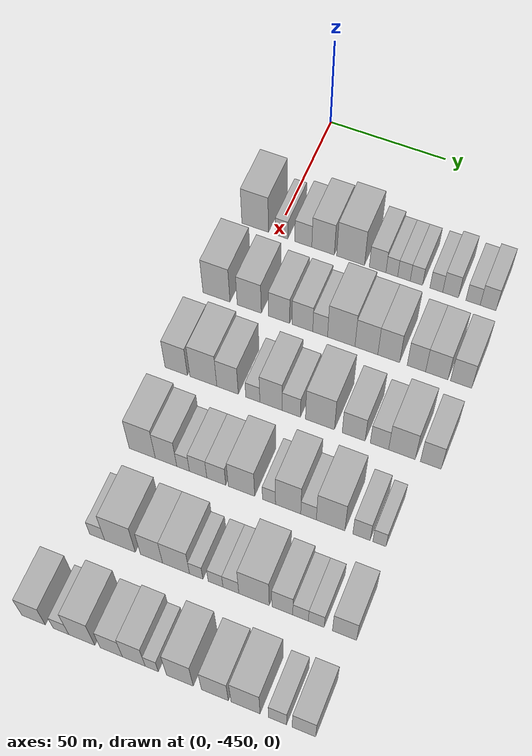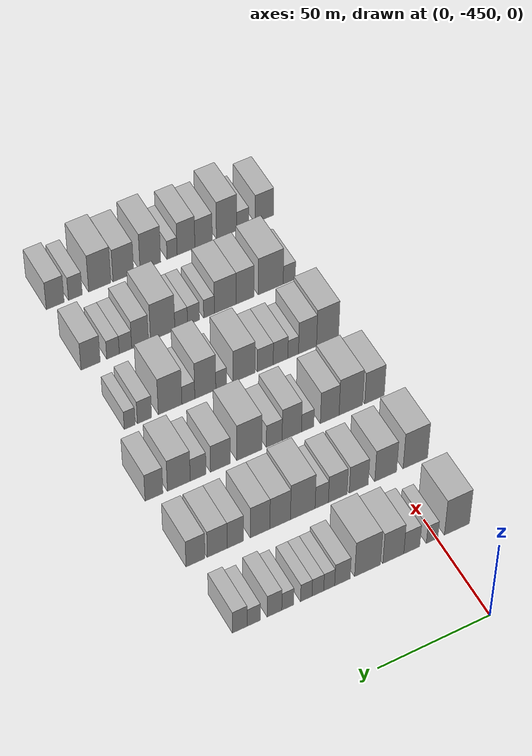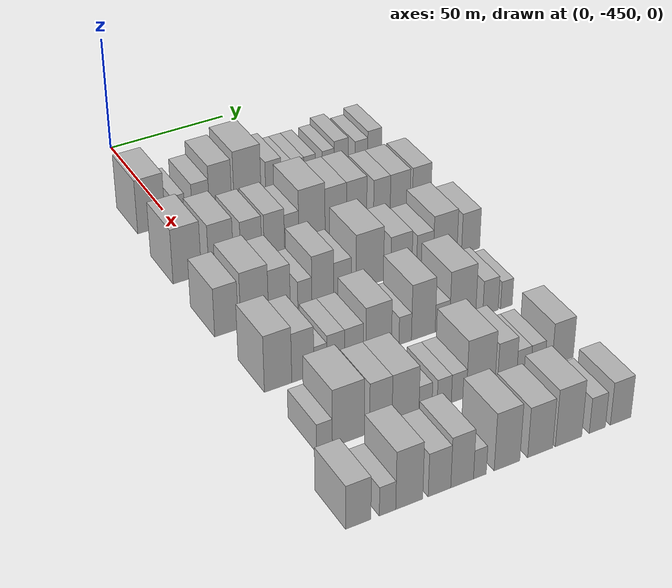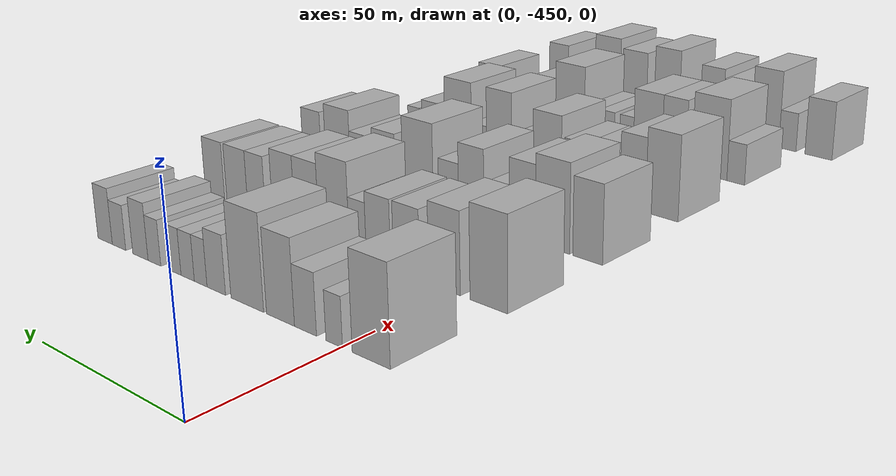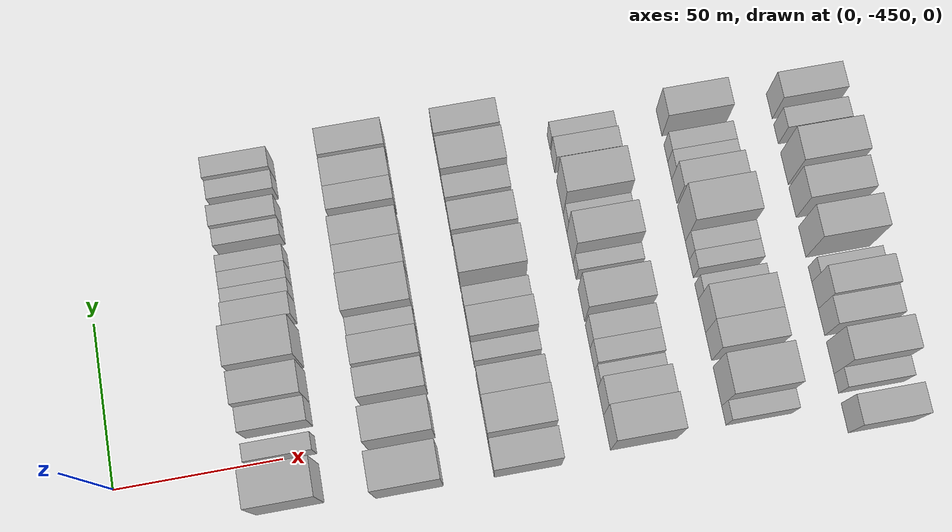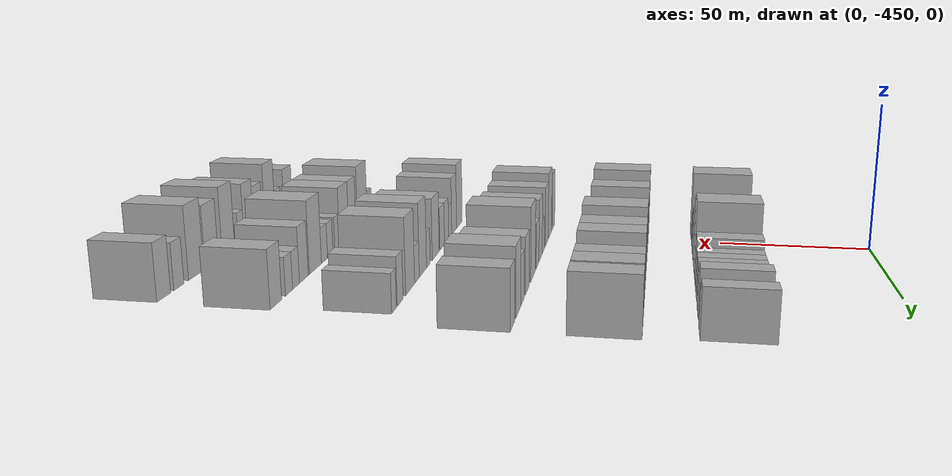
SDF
<sdf version="1.6">
 <world name="default">
  <model name="building_14">
   <static>1</static>
   <pose>50.0000 -459.0556 0 0.000000 0.000000 0.000000</pose>
   <link name="link">
    <pose>0 0 12.00 0 0 0</pose>
    <collision name="collision"><geometry><box><size>20.0000 11.4390 24.0000</size></box></geometry></collision>
    <visual name="visual">
     <cast_shadows>0</cast_shadows>
     <geometry><box><size>20.0000 11.4390 24.0000</size></box></geometry>
     <material>
      <script>
       <uri>model://HANNAS_wall/materials/scripts</uri>
       <uri>model://HANNAS_wall/materials/textures</uri>
       <name>vrc/HANNAS_wall</name>
      </script>
     </material>
    </visual>
   </link>
  </model>
  <model name="building_15">
   <static>1</static>
   <pose>50.0000 -447.7191 0 0.000000 0.000000 0.000000</pose>
   <link name="link">
    <pose>0 0 6.00 0 0 0</pose>
    <collision name="collision"><geometry><box><size>20.0000 5.2340 12.0000</size></box></geometry></collision>
    <visual name="visual">
     <cast_shadows>0</cast_shadows>
     <geometry><box><size>20.0000 5.2340 12.0000</size></box></geometry>
     <material>
      <script>
       <uri>model://HANNAS_wall/materials/scripts</uri>
       <uri>model://HANNAS_wall/materials/textures</uri>
       <name>vrc/HANNAS_wall</name>
      </script>
     </material>
    </visual>
   </link>
  </model>
  <model name="building_16">
   <static>1</static>
   <pose>50.0000 -438.4945 0 0.000000 0.000000 0.000000</pose>
   <link name="link">
    <pose>0 0 7.50 0 0 0</pose>
    <collision name="collision"><geometry><box><size>20.0000 7.2152 15.0000</size></box></geometry></collision>
    <visual name="visual">
     <cast_shadows>0</cast_shadows>
     <geometry><box><size>20.0000 7.2152 15.0000</size></box></geometry>
     <material>
      <script>
       <uri>model://HANNAS_wall/materials/scripts</uri>
       <uri>model://HANNAS_wall/materials/textures</uri>
       <name>vrc/HANNAS_wall</name>
      </script>
     </material>
    </visual>
   </link>
  </model>
  <model name="building_17">
   <static>1</static>
   <pose>50.0000 -430.1381 0 0.000000 0.000000 0.000000</pose>
   <link name="link">
    <pose>0 0 10.50 0 0 0</pose>
    <collision name="collision"><geometry><box><size>20.0000 9.4976 21.0000</size></box></geometry></collision>
    <visual name="visual">
     <cast_shadows>0</cast_shadows>
     <geometry><box><size>20.0000 9.4976 21.0000</size></box></geometry>
     <material>
      <script>
       <uri>model://HANNAS_wall/materials/scripts</uri>
       <uri>model://HANNAS_wall/materials/textures</uri>
       <name>vrc/HANNAS_wall</name>
      </script>
     </material>
    </visual>
   </link>
  </model>
  <model name="building_18">
   <static>1</static>
   <pose>50.0000 -418.5668 0 0.000000 0.000000 0.000000</pose>
   <link name="link">
    <pose>0 0 12.00 0 0 0</pose>
    <collision name="collision"><geometry><box><size>20.0000 11.6448 24.0000</size></box></geometry></collision>
    <visual name="visual">
     <cast_shadows>0</cast_shadows>
     <geometry><box><size>20.0000 11.6448 24.0000</size></box></geometry>
     <material>
      <script>
       <uri>model://HANNAS_wall/materials/scripts</uri>
       <uri>model://HANNAS_wall/materials/textures</uri>
       <name>vrc/HANNAS_wall</name>
      </script>
     </material>
    </visual>
   </link>
  </model>
  <model name="building_19">
   <static>1</static>
   <pose>50.0000 -407.2916 0 0.000000 0.000000 0.000000</pose>
   <link name="link">
    <pose>0 0 7.50 0 0 0</pose>
    <collision name="collision"><geometry><box><size>20.0000 6.9057 15.0000</size></box></geometry></collision>
    <visual name="visual">
     <cast_shadows>0</cast_shadows>
     <geometry><box><size>20.0000 6.9057 15.0000</size></box></geometry>
     <material>
      <script>
       <uri>model://HANNAS_wall/materials/scripts</uri>
       <uri>model://HANNAS_wall/materials/textures</uri>
       <name>vrc/HANNAS_wall</name>
      </script>
     </material>
    </visual>
   </link>
  </model>
  <model name="building_20">
   <static>1</static>
   <pose>50.0000 -401.4126 0 0.000000 0.000000 0.000000</pose>
   <link name="link">
    <pose>0 0 6.00 0 0 0</pose>
    <collision name="collision"><geometry><box><size>20.0000 4.8524 12.0000</size></box></geometry></collision>
    <visual name="visual">
     <cast_shadows>0</cast_shadows>
     <geometry><box><size>20.0000 4.8524 12.0000</size></box></geometry>
     <material>
      <script>
       <uri>model://HANNAS_wall/materials/scripts</uri>
       <uri>model://HANNAS_wall/materials/textures</uri>
       <name>vrc/HANNAS_wall</name>
      </script>
     </material>
    </visual>
   </link>
  </model>
  <model name="building_21">
   <static>1</static>
   <pose>50.0000 -396.3918 0 0.000000 0.000000 0.000000</pose>
   <link name="link">
    <pose>0 0 6.00 0 0 0</pose>
    <collision name="collision"><geometry><box><size>20.0000 5.1893 12.0000</size></box></geometry></collision>
    <visual name="visual">
     <cast_shadows>0</cast_shadows>
     <geometry><box><size>20.0000 5.1893 12.0000</size></box></geometry>
     <material>
      <script>
       <uri>model://HANNAS_wall/materials/scripts</uri>
       <uri>model://HANNAS_wall/materials/textures</uri>
       <name>vrc/HANNAS_wall</name>
      </script>
     </material>
    </visual>
   </link>
  </model>
  <model name="building_22">
   <static>1</static>
   <pose>50.0000 -391.2561 0 0.000000 0.000000 0.000000</pose>
   <link name="link">
    <pose>0 0 6.00 0 0 0</pose>
    <collision name="collision"><geometry><box><size>20.0000 5.0821 12.0000</size></box></geometry></collision>
    <visual name="visual">
     <cast_shadows>0</cast_shadows>
     <geometry><box><size>20.0000 5.0821 12.0000</size></box></geometry>
     <material>
      <script>
       <uri>model://HANNAS_wall/materials/scripts</uri>
       <uri>model://HANNAS_wall/materials/textures</uri>
       <name>vrc/HANNAS_wall</name>
      </script>
     </material>
    </visual>
   </link>
  </model>
  <model name="building_23">
   <static>1</static>
   <pose>50.0000 -383.0944 0 0.000000 0.000000 0.000000</pose>
   <link name="link">
    <pose>0 0 6.00 0 0 0</pose>
    <collision name="collision"><geometry><box><size>20.0000 5.2412 12.0000</size></box></geometry></collision>
    <visual name="visual">
     <cast_shadows>0</cast_shadows>
     <geometry><box><size>20.0000 5.2412 12.0000</size></box></geometry>
     <material>
      <script>
       <uri>model://HANNAS_wall/materials/scripts</uri>
       <uri>model://HANNAS_wall/materials/textures</uri>
       <name>vrc/HANNAS_wall</name>
      </script>
     </material>
    </visual>
   </link>
  </model>
  <model name="building_24">
   <static>1</static>
   <pose>50.0000 -377.2749 0 0.000000 0.000000 0.000000</pose>
   <link name="link">
    <pose>0 0 7.50 0 0 0</pose>
    <collision name="collision"><geometry><box><size>20.0000 6.3980 15.0000</size></box></geometry></collision>
    <visual name="visual">
     <cast_shadows>0</cast_shadows>
     <geometry><box><size>20.0000 6.3980 15.0000</size></box></geometry>
     <material>
      <script>
       <uri>model://HANNAS_wall/materials/scripts</uri>
       <uri>model://HANNAS_wall/materials/textures</uri>
       <name>vrc/HANNAS_wall</name>
      </script>
     </material>
    </visual>
   </link>
  </model>
  <model name="building_25">
   <static>1</static>
   <pose>50.0000 -368.1648 0 0.000000 0.000000 0.000000</pose>
   <link name="link">
    <pose>0 0 6.00 0 0 0</pose>
    <collision name="collision"><geometry><box><size>20.0000 5.8223 12.0000</size></box></geometry></collision>
    <visual name="visual">
     <cast_shadows>0</cast_shadows>
     <geometry><box><size>20.0000 5.8223 12.0000</size></box></geometry>
     <material>
      <script>
       <uri>model://HANNAS_wall/materials/scripts</uri>
       <uri>model://HANNAS_wall/materials/textures</uri>
       <name>vrc/HANNAS_wall</name>
      </script>
     </material>
    </visual>
   </link>
  </model>
  <model name="building_26">
   <static>1</static>
   <pose>50.0000 -362.0765 0 0.000000 0.000000 0.000000</pose>
   <link name="link">
    <pose>0 0 7.50 0 0 0</pose>
    <collision name="collision"><geometry><box><size>20.0000 6.3543 15.0000</size></box></geometry></collision>
    <visual name="visual">
     <cast_shadows>0</cast_shadows>
     <geometry><box><size>20.0000 6.3543 15.0000</size></box></geometry>
     <material>
      <script>
       <uri>model://HANNAS_wall/materials/scripts</uri>
       <uri>model://HANNAS_wall/materials/textures</uri>
       <name>vrc/HANNAS_wall</name>
      </script>
     </material>
    </visual>
   </link>
  </model>
  <model name="building_137">
   <static>1</static>
   <pose>85.0000 -460.5840 0 0.000000 0.000000 0.000000</pose>
   <link name="link">
    <pose>0 0 12.00 0 0 0</pose>
    <collision name="collision"><geometry><box><size>20.0000 11.3625 24.0000</size></box></geometry></collision>
    <visual name="visual">
     <cast_shadows>0</cast_shadows>
     <geometry><box><size>20.0000 11.3625 24.0000</size></box></geometry>
     <material>
      <script>
       <uri>model://HANNAS_wall/materials/scripts</uri>
       <uri>model://HANNAS_wall/materials/textures</uri>
       <name>vrc/HANNAS_wall</name>
      </script>
     </material>
    </visual>
   </link>
  </model>
  <model name="building_138">
   <static>1</static>
   <pose>85.0000 -446.8792 0 0.000000 0.000000 0.000000</pose>
   <link name="link">
    <pose>0 0 10.50 0 0 0</pose>
    <collision name="collision"><geometry><box><size>20.0000 10.0472 21.0000</size></box></geometry></collision>
    <visual name="visual">
     <cast_shadows>0</cast_shadows>
     <geometry><box><size>20.0000 10.0472 21.0000</size></box></geometry>
     <material>
      <script>
       <uri>model://HANNAS_wall/materials/scripts</uri>
       <uri>model://HANNAS_wall/materials/textures</uri>
       <name>vrc/HANNAS_wall</name>
      </script>
     </material>
    </visual>
   </link>
  </model>
  <model name="building_139">
   <static>1</static>
   <pose>85.0000 -434.5070 0 0.000000 0.000000 0.000000</pose>
   <link name="link">
    <pose>0 0 9.00 0 0 0</pose>
    <collision name="collision"><geometry><box><size>20.0000 8.6971 18.0000</size></box></geometry></collision>
    <visual name="visual">
     <cast_shadows>0</cast_shadows>
     <geometry><box><size>20.0000 8.6971 18.0000</size></box></geometry>
     <material>
      <script>
       <uri>model://HANNAS_wall/materials/scripts</uri>
       <uri>model://HANNAS_wall/materials/textures</uri>
       <name>vrc/HANNAS_wall</name>
      </script>
     </material>
    </visual>
   </link>
  </model>
  <model name="building_140">
   <static>1</static>
   <pose>85.0000 -424.9160 0 0.000000 0.000000 0.000000</pose>
   <link name="link">
    <pose>0 0 9.00 0 0 0</pose>
    <collision name="collision"><geometry><box><size>20.0000 8.4850 18.0000</size></box></geometry></collision>
    <visual name="visual">
     <cast_shadows>0</cast_shadows>
     <geometry><box><size>20.0000 8.4850 18.0000</size></box></geometry>
     <material>
      <script>
       <uri>model://HANNAS_wall/materials/scripts</uri>
       <uri>model://HANNAS_wall/materials/textures</uri>
       <name>vrc/HANNAS_wall</name>
      </script>
     </material>
    </visual>
   </link>
  </model>
  <model name="building_141">
   <static>1</static>
   <pose>85.0000 -417.6620 0 0.000000 0.000000 0.000000</pose>
   <link name="link">
    <pose>0 0 7.50 0 0 0</pose>
    <collision name="collision"><geometry><box><size>20.0000 6.0230 15.0000</size></box></geometry></collision>
    <visual name="visual">
     <cast_shadows>0</cast_shadows>
     <geometry><box><size>20.0000 6.0230 15.0000</size></box></geometry>
     <material>
      <script>
       <uri>model://HANNAS_wall/materials/scripts</uri>
       <uri>model://HANNAS_wall/materials/textures</uri>
       <name>vrc/HANNAS_wall</name>
      </script>
     </material>
    </visual>
   </link>
  </model>
  <model name="building_142">
   <static>1</static>
   <pose>85.0000 -409.0831 0 0.000000 0.000000 0.000000</pose>
   <link name="link">
    <pose>0 0 12.00 0 0 0</pose>
    <collision name="collision"><geometry><box><size>20.0000 11.1348 24.0000</size></box></geometry></collision>
    <visual name="visual">
     <cast_shadows>0</cast_shadows>
     <geometry><box><size>20.0000 11.1348 24.0000</size></box></geometry>
     <material>
      <script>
       <uri>model://HANNAS_wall/materials/scripts</uri>
       <uri>model://HANNAS_wall/materials/textures</uri>
       <name>vrc/HANNAS_wall</name>
      </script>
     </material>
    </visual>
   </link>
  </model>
  <model name="building_143">
   <static>1</static>
   <pose>85.0000 -398.9095 0 0.000000 0.000000 0.000000</pose>
   <link name="link">
    <pose>0 0 10.50 0 0 0</pose>
    <collision name="collision"><geometry><box><size>20.0000 9.2125 21.0000</size></box></geometry></collision>
    <visual name="visual">
     <cast_shadows>0</cast_shadows>
     <geometry><box><size>20.0000 9.2125 21.0000</size></box></geometry>
     <material>
      <script>
       <uri>model://HANNAS_wall/materials/scripts</uri>
       <uri>model://HANNAS_wall/materials/textures</uri>
       <name>vrc/HANNAS_wall</name>
      </script>
     </material>
    </visual>
   </link>
  </model>
  <model name="building_144">
   <static>1</static>
   <pose>85.0000 -389.9271 0 0.000000 0.000000 0.000000</pose>
   <link name="link">
    <pose>0 0 10.50 0 0 0</pose>
    <collision name="collision"><geometry><box><size>20.0000 8.7524 21.0000</size></box></geometry></collision>
    <visual name="visual">
     <cast_shadows>0</cast_shadows>
     <geometry><box><size>20.0000 8.7524 21.0000</size></box></geometry>
     <material>
      <script>
       <uri>model://HANNAS_wall/materials/scripts</uri>
       <uri>model://HANNAS_wall/materials/textures</uri>
       <name>vrc/HANNAS_wall</name>
      </script>
     </material>
    </visual>
   </link>
  </model>
  <model name="building_145">
   <static>1</static>
   <pose>85.0000 -378.8955 0 0.000000 0.000000 0.000000</pose>
   <link name="link">
    <pose>0 0 9.00 0 0 0</pose>
    <collision name="collision"><geometry><box><size>20.0000 7.3107 18.0000</size></box></geometry></collision>
    <visual name="visual">
     <cast_shadows>0</cast_shadows>
     <geometry><box><size>20.0000 7.3107 18.0000</size></box></geometry>
     <material>
      <script>
       <uri>model://HANNAS_wall/materials/scripts</uri>
       <uri>model://HANNAS_wall/materials/textures</uri>
       <name>vrc/HANNAS_wall</name>
      </script>
     </material>
    </visual>
   </link>
  </model>
  <model name="building_146">
   <static>1</static>
   <pose>85.0000 -370.8297 0 0.000000 0.000000 0.000000</pose>
   <link name="link">
    <pose>0 0 9.00 0 0 0</pose>
    <collision name="collision"><geometry><box><size>20.0000 8.8209 18.0000</size></box></geometry></collision>
    <visual name="visual">
     <cast_shadows>0</cast_shadows>
     <geometry><box><size>20.0000 8.8209 18.0000</size></box></geometry>
     <material>
      <script>
       <uri>model://HANNAS_wall/materials/scripts</uri>
       <uri>model://HANNAS_wall/materials/textures</uri>
       <name>vrc/HANNAS_wall</name>
      </script>
     </material>
    </visual>
   </link>
  </model>
  <model name="building_147">
   <static>1</static>
   <pose>85.0000 -361.2389 0 0.000000 0.000000 0.000000</pose>
   <link name="link">
    <pose>0 0 9.00 0 0 0</pose>
    <collision name="collision"><geometry><box><size>20.0000 8.3607 18.0000</size></box></geometry></collision>
    <visual name="visual">
     <cast_shadows>0</cast_shadows>
     <geometry><box><size>20.0000 8.3607 18.0000</size></box></geometry>
     <material>
      <script>
       <uri>model://HANNAS_wall/materials/scripts</uri>
       <uri>model://HANNAS_wall/materials/textures</uri>
       <name>vrc/HANNAS_wall</name>
      </script>
     </material>
    </visual>
   </link>
  </model>
  <model name="building_266">
   <static>1</static>
   <pose>120.0000 -461.8025 0 0.000000 0.000000 0.000000</pose>
   <link name="link">
    <pose>0 0 10.50 0 0 0</pose>
    <collision name="collision"><geometry><box><size>20.0000 9.1870 21.0000</size></box></geometry></collision>
    <visual name="visual">
     <cast_shadows>0</cast_shadows>
     <geometry><box><size>20.0000 9.1870 21.0000</size></box></geometry>
     <material>
      <script>
       <uri>model://HANNAS_wall/materials/scripts</uri>
       <uri>model://HANNAS_wall/materials/textures</uri>
       <name>vrc/HANNAS_wall</name>
      </script>
     </material>
    </visual>
   </link>
  </model>
  <model name="building_267">
   <static>1</static>
   <pose>120.0000 -450.7279 0 0.000000 0.000000 0.000000</pose>
   <link name="link">
    <pose>0 0 12.00 0 0 0</pose>
    <collision name="collision"><geometry><box><size>20.0000 10.9621 24.0000</size></box></geometry></collision>
    <visual name="visual">
     <cast_shadows>0</cast_shadows>
     <geometry><box><size>20.0000 10.9621 24.0000</size></box></geometry>
     <material>
      <script>
       <uri>model://HANNAS_wall/materials/scripts</uri>
       <uri>model://HANNAS_wall/materials/textures</uri>
       <name>vrc/HANNAS_wall</name>
      </script>
     </material>
    </visual>
   </link>
  </model>
  <model name="building_268">
   <static>1</static>
   <pose>120.0000 -440.9028 0 0.000000 0.000000 0.000000</pose>
   <link name="link">
    <pose>0 0 10.50 0 0 0</pose>
    <collision name="collision"><geometry><box><size>20.0000 8.6882 21.0000</size></box></geometry></collision>
    <visual name="visual">
     <cast_shadows>0</cast_shadows>
     <geometry><box><size>20.0000 8.6882 21.0000</size></box></geometry>
     <material>
      <script>
       <uri>model://HANNAS_wall/materials/scripts</uri>
       <uri>model://HANNAS_wall/materials/textures</uri>
       <name>vrc/HANNAS_wall</name>
      </script>
     </material>
    </visual>
   </link>
  </model>
  <model name="building_269">
   <static>1</static>
   <pose>120.0000 -430.7121 0 0.000000 0.000000 0.000000</pose>
   <link name="link">
    <pose>0 0 6.00 0 0 0</pose>
    <collision name="collision"><geometry><box><size>20.0000 5.6932 12.0000</size></box></geometry></collision>
    <visual name="visual">
     <cast_shadows>0</cast_shadows>
     <geometry><box><size>20.0000 5.6932 12.0000</size></box></geometry>
     <material>
      <script>
       <uri>model://HANNAS_wall/materials/scripts</uri>
       <uri>model://HANNAS_wall/materials/textures</uri>
       <name>vrc/HANNAS_wall</name>
      </script>
     </material>
    </visual>
   </link>
  </model>
  <model name="building_270">
   <static>1</static>
   <pose>120.0000 -423.3952 0 0.000000 0.000000 0.000000</pose>
   <link name="link">
    <pose>0 0 10.50 0 0 0</pose>
    <collision name="collision"><geometry><box><size>20.0000 8.9406 21.0000</size></box></geometry></collision>
    <visual name="visual">
     <cast_shadows>0</cast_shadows>
     <geometry><box><size>20.0000 8.9406 21.0000</size></box></geometry>
     <material>
      <script>
       <uri>model://HANNAS_wall/materials/scripts</uri>
       <uri>model://HANNAS_wall/materials/textures</uri>
       <name>vrc/HANNAS_wall</name>
      </script>
     </material>
    </visual>
   </link>
  </model>
  <model name="building_271">
   <static>1</static>
   <pose>120.0000 -415.3201 0 0.000000 0.000000 0.000000</pose>
   <link name="link">
    <pose>0 0 7.50 0 0 0</pose>
    <collision name="collision"><geometry><box><size>20.0000 7.2098 15.0000</size></box></geometry></collision>
    <visual name="visual">
     <cast_shadows>0</cast_shadows>
     <geometry><box><size>20.0000 7.2098 15.0000</size></box></geometry>
     <material>
      <script>
       <uri>model://HANNAS_wall/materials/scripts</uri>
       <uri>model://HANNAS_wall/materials/textures</uri>
       <name>vrc/HANNAS_wall</name>
      </script>
     </material>
    </visual>
   </link>
  </model>
  <model name="building_272">
   <static>1</static>
   <pose>120.0000 -403.9993 0 0.000000 0.000000 0.000000</pose>
   <link name="link">
    <pose>0 0 12.00 0 0 0</pose>
    <collision name="collision"><geometry><box><size>20.0000 11.4317 24.0000</size></box></geometry></collision>
    <visual name="visual">
     <cast_shadows>0</cast_shadows>
     <geometry><box><size>20.0000 11.4317 24.0000</size></box></geometry>
     <material>
      <script>
       <uri>model://HANNAS_wall/materials/scripts</uri>
       <uri>model://HANNAS_wall/materials/textures</uri>
       <name>vrc/HANNAS_wall</name>
      </script>
     </material>
    </visual>
   </link>
  </model>
  <model name="building_273">
   <static>1</static>
   <pose>120.0000 -390.8075 0 0.000000 0.000000 0.000000</pose>
   <link name="link">
    <pose>0 0 9.00 0 0 0</pose>
    <collision name="collision"><geometry><box><size>20.0000 8.9520 18.0000</size></box></geometry></collision>
    <visual name="visual">
     <cast_shadows>0</cast_shadows>
     <geometry><box><size>20.0000 8.9520 18.0000</size></box></geometry>
     <material>
      <script>
       <uri>model://HANNAS_wall/materials/scripts</uri>
       <uri>model://HANNAS_wall/materials/textures</uri>
       <name>vrc/HANNAS_wall</name>
      </script>
     </material>
    </visual>
   </link>
  </model>
  <model name="building_274">
   <static>1</static>
   <pose>120.0000 -380.7781 0 0.000000 0.000000 0.000000</pose>
   <link name="link">
    <pose>0 0 7.50 0 0 0</pose>
    <collision name="collision"><geometry><box><size>20.0000 7.1067 15.0000</size></box></geometry></collision>
    <visual name="visual">
     <cast_shadows>0</cast_shadows>
     <geometry><box><size>20.0000 7.1067 15.0000</size></box></geometry>
     <material>
      <script>
       <uri>model://HANNAS_wall/materials/scripts</uri>
       <uri>model://HANNAS_wall/materials/textures</uri>
       <name>vrc/HANNAS_wall</name>
      </script>
     </material>
    </visual>
   </link>
  </model>
  <model name="building_275">
   <static>1</static>
   <pose>120.0000 -372.1007 0 0.000000 0.000000 0.000000</pose>
   <link name="link">
    <pose>0 0 10.50 0 0 0</pose>
    <collision name="collision"><geometry><box><size>20.0000 10.2482 21.0000</size></box></geometry></collision>
    <visual name="visual">
     <cast_shadows>0</cast_shadows>
     <geometry><box><size>20.0000 10.2482 21.0000</size></box></geometry>
     <material>
      <script>
       <uri>model://HANNAS_wall/materials/scripts</uri>
       <uri>model://HANNAS_wall/materials/textures</uri>
       <name>vrc/HANNAS_wall</name>
      </script>
     </material>
    </visual>
   </link>
  </model>
  <model name="building_276">
   <static>1</static>
   <pose>120.0000 -361.0010 0 0.000000 0.000000 0.000000</pose>
   <link name="link">
    <pose>0 0 9.00 0 0 0</pose>
    <collision name="collision"><geometry><box><size>20.0000 7.9511 18.0000</size></box></geometry></collision>
    <visual name="visual">
     <cast_shadows>0</cast_shadows>
     <geometry><box><size>20.0000 7.9511 18.0000</size></box></geometry>
     <material>
      <script>
       <uri>model://HANNAS_wall/materials/scripts</uri>
       <uri>model://HANNAS_wall/materials/textures</uri>
       <name>vrc/HANNAS_wall</name>
      </script>
     </material>
    </visual>
   </link>
  </model>
  <model name="building_393">
   <static>1</static>
   <pose>155.0000 -459.5271 0 0.000000 0.000000 0.000000</pose>
   <link name="link">
    <pose>0 0 12.00 0 0 0</pose>
    <collision name="collision"><geometry><box><size>20.0000 10.4089 24.0000</size></box></geometry></collision>
    <visual name="visual">
     <cast_shadows>0</cast_shadows>
     <geometry><box><size>20.0000 10.4089 24.0000</size></box></geometry>
     <material>
      <script>
       <uri>model://HANNAS_wall/materials/scripts</uri>
       <uri>model://HANNAS_wall/materials/textures</uri>
       <name>vrc/HANNAS_wall</name>
      </script>
     </material>
    </visual>
   </link>
  </model>
  <model name="building_394">
   <static>1</static>
   <pose>155.0000 -450.0661 0 0.000000 0.000000 0.000000</pose>
   <link name="link">
    <pose>0 0 10.50 0 0 0</pose>
    <collision name="collision"><geometry><box><size>20.0000 8.5130 21.0000</size></box></geometry></collision>
    <visual name="visual">
     <cast_shadows>0</cast_shadows>
     <geometry><box><size>20.0000 8.5130 21.0000</size></box></geometry>
     <material>
      <script>
       <uri>model://HANNAS_wall/materials/scripts</uri>
       <uri>model://HANNAS_wall/materials/textures</uri>
       <name>vrc/HANNAS_wall</name>
      </script>
     </material>
    </visual>
   </link>
  </model>
  <model name="building_395">
   <static>1</static>
   <pose>155.0000 -443.3125 0 0.000000 0.000000 0.000000</pose>
   <link name="link">
    <pose>0 0 6.00 0 0 0</pose>
    <collision name="collision"><geometry><box><size>20.0000 4.9943 12.0000</size></box></geometry></collision>
    <visual name="visual">
     <cast_shadows>0</cast_shadows>
     <geometry><box><size>20.0000 4.9943 12.0000</size></box></geometry>
     <material>
      <script>
       <uri>model://HANNAS_wall/materials/scripts</uri>
       <uri>model://HANNAS_wall/materials/textures</uri>
       <name>vrc/HANNAS_wall</name>
      </script>
     </material>
    </visual>
   </link>
  </model>
  <model name="building_396">
   <static>1</static>
   <pose>155.0000 -437.3774 0 0.000000 0.000000 0.000000</pose>
   <link name="link">
    <pose>0 0 7.50 0 0 0</pose>
    <collision name="collision"><geometry><box><size>20.0000 6.8758 15.0000</size></box></geometry></collision>
    <visual name="visual">
     <cast_shadows>0</cast_shadows>
     <geometry><box><size>20.0000 6.8758 15.0000</size></box></geometry>
     <material>
      <script>
       <uri>model://HANNAS_wall/materials/scripts</uri>
       <uri>model://HANNAS_wall/materials/textures</uri>
       <name>vrc/HANNAS_wall</name>
      </script>
     </material>
    </visual>
   </link>
  </model>
  <model name="building_397">
   <static>1</static>
   <pose>155.0000 -430.2400 0 0.000000 0.000000 0.000000</pose>
   <link name="link">
    <pose>0 0 7.50 0 0 0</pose>
    <collision name="collision"><geometry><box><size>20.0000 7.3989 15.0000</size></box></geometry></collision>
    <visual name="visual">
     <cast_shadows>0</cast_shadows>
     <geometry><box><size>20.0000 7.3989 15.0000</size></box></geometry>
     <material>
      <script>
       <uri>model://HANNAS_wall/materials/scripts</uri>
       <uri>model://HANNAS_wall/materials/textures</uri>
       <name>vrc/HANNAS_wall</name>
      </script>
     </material>
    </visual>
   </link>
  </model>
  <model name="building_398">
   <static>1</static>
   <pose>155.0000 -420.4184 0 0.000000 0.000000 0.000000</pose>
   <link name="link">
    <pose>0 0 10.50 0 0 0</pose>
    <collision name="collision"><geometry><box><size>20.0000 10.2443 21.0000</size></box></geometry></collision>
    <visual name="visual">
     <cast_shadows>0</cast_shadows>
     <geometry><box><size>20.0000 10.2443 21.0000</size></box></geometry>
     <material>
      <script>
       <uri>model://HANNAS_wall/materials/scripts</uri>
       <uri>model://HANNAS_wall/materials/textures</uri>
       <name>vrc/HANNAS_wall</name>
      </script>
     </material>
    </visual>
   </link>
  </model>
  <model name="building_399">
   <static>1</static>
   <pose>155.0000 -409.7811 0 0.000000 0.000000 0.000000</pose>
   <link name="link">
    <pose>0 0 6.00 0 0 0</pose>
    <collision name="collision"><geometry><box><size>20.0000 5.0304 12.0000</size></box></geometry></collision>
    <visual name="visual">
     <cast_shadows>0</cast_shadows>
     <geometry><box><size>20.0000 5.0304 12.0000</size></box></geometry>
     <material>
      <script>
       <uri>model://HANNAS_wall/materials/scripts</uri>
       <uri>model://HANNAS_wall/materials/textures</uri>
       <name>vrc/HANNAS_wall</name>
      </script>
     </material>
    </visual>
   </link>
  </model>
  <model name="building_400">
   <static>1</static>
   <pose>155.0000 -402.4257 0 0.000000 0.000000 0.000000</pose>
   <link name="link">
    <pose>0 0 12.00 0 0 0</pose>
    <collision name="collision"><geometry><box><size>20.0000 9.6803 24.0000</size></box></geometry></collision>
    <visual name="visual">
     <cast_shadows>0</cast_shadows>
     <geometry><box><size>20.0000 9.6803 24.0000</size></box></geometry>
     <material>
      <script>
       <uri>model://HANNAS_wall/materials/scripts</uri>
       <uri>model://HANNAS_wall/materials/textures</uri>
       <name>vrc/HANNAS_wall</name>
      </script>
     </material>
    </visual>
   </link>
  </model>
  <model name="building_401">
   <static>1</static>
   <pose>155.0000 -394.6263 0 0.000000 0.000000 0.000000</pose>
   <link name="link">
    <pose>0 0 6.00 0 0 0</pose>
    <collision name="collision"><geometry><box><size>20.0000 5.9185 12.0000</size></box></geometry></collision>
    <visual name="visual">
     <cast_shadows>0</cast_shadows>
     <geometry><box><size>20.0000 5.9185 12.0000</size></box></geometry>
     <material>
      <script>
       <uri>model://HANNAS_wall/materials/scripts</uri>
       <uri>model://HANNAS_wall/materials/textures</uri>
       <name>vrc/HANNAS_wall</name>
      </script>
     </material>
    </visual>
   </link>
  </model>
  <model name="building_402">
   <static>1</static>
   <pose>155.0000 -386.2705 0 0.000000 0.000000 0.000000</pose>
   <link name="link">
    <pose>0 0 12.00 0 0 0</pose>
    <collision name="collision"><geometry><box><size>20.0000 10.7932 24.0000</size></box></geometry></collision>
    <visual name="visual">
     <cast_shadows>0</cast_shadows>
     <geometry><box><size>20.0000 10.7932 24.0000</size></box></geometry>
     <material>
      <script>
       <uri>model://HANNAS_wall/materials/scripts</uri>
       <uri>model://HANNAS_wall/materials/textures</uri>
       <name>vrc/HANNAS_wall</name>
      </script>
     </material>
    </visual>
   </link>
  </model>
  <model name="building_403">
   <static>1</static>
   <pose>155.0000 -374.6212 0 0.000000 0.000000 0.000000</pose>
   <link name="link">
    <pose>0 0 7.50 0 0 0</pose>
    <collision name="collision"><geometry><box><size>20.0000 6.5054 15.0000</size></box></geometry></collision>
    <visual name="visual">
     <cast_shadows>0</cast_shadows>
     <geometry><box><size>20.0000 6.5054 15.0000</size></box></geometry>
     <material>
      <script>
       <uri>model://HANNAS_wall/materials/scripts</uri>
       <uri>model://HANNAS_wall/materials/textures</uri>
       <name>vrc/HANNAS_wall</name>
      </script>
     </material>
    </visual>
   </link>
  </model>
  <model name="building_404">
   <static>1</static>
   <pose>155.0000 -367.8966 0 0.000000 0.000000 0.000000</pose>
   <link name="link">
    <pose>0 0 6.00 0 0 0</pose>
    <collision name="collision"><geometry><box><size>20.0000 4.9437 12.0000</size></box></geometry></collision>
    <visual name="visual">
     <cast_shadows>0</cast_shadows>
     <geometry><box><size>20.0000 4.9437 12.0000</size></box></geometry>
     <material>
      <script>
       <uri>model://HANNAS_wall/materials/scripts</uri>
       <uri>model://HANNAS_wall/materials/textures</uri>
       <name>vrc/HANNAS_wall</name>
      </script>
     </material>
    </visual>
   </link>
  </model>
  <model name="building_523">
   <static>1</static>
   <pose>190.0000 -460.7053 0 0.000000 0.000000 0.000000</pose>
   <link name="link">
    <pose>0 0 6.00 0 0 0</pose>
    <collision name="collision"><geometry><box><size>20.0000 5.8080 12.0000</size></box></geometry></collision>
    <visual name="visual">
     <cast_shadows>0</cast_shadows>
     <geometry><box><size>20.0000 5.8080 12.0000</size></box></geometry>
     <material>
      <script>
       <uri>model://HANNAS_wall/materials/scripts</uri>
       <uri>model://HANNAS_wall/materials/textures</uri>
       <name>vrc/HANNAS_wall</name>
      </script>
     </material>
    </visual>
   </link>
  </model>
  <model name="building_524">
   <static>1</static>
   <pose>190.0000 -451.8497 0 0.000000 0.000000 0.000000</pose>
   <link name="link">
    <pose>0 0 12.00 0 0 0</pose>
    <collision name="collision"><geometry><box><size>20.0000 11.9031 24.0000</size></box></geometry></collision>
    <visual name="visual">
     <cast_shadows>0</cast_shadows>
     <geometry><box><size>20.0000 11.9031 24.0000</size></box></geometry>
     <material>
      <script>
       <uri>model://HANNAS_wall/materials/scripts</uri>
       <uri>model://HANNAS_wall/materials/textures</uri>
       <name>vrc/HANNAS_wall</name>
      </script>
     </material>
    </visual>
   </link>
  </model>
  <model name="building_525">
   <static>1</static>
   <pose>190.0000 -439.6551 0 0.000000 0.000000 0.000000</pose>
   <link name="link">
    <pose>0 0 10.50 0 0 0</pose>
    <collision name="collision"><geometry><box><size>20.0000 8.4861 21.0000</size></box></geometry></collision>
    <visual name="visual">
     <cast_shadows>0</cast_shadows>
     <geometry><box><size>20.0000 8.4861 21.0000</size></box></geometry>
     <material>
      <script>
       <uri>model://HANNAS_wall/materials/scripts</uri>
       <uri>model://HANNAS_wall/materials/textures</uri>
       <name>vrc/HANNAS_wall</name>
      </script>
     </material>
    </visual>
   </link>
  </model>
  <model name="building_526">
   <static>1</static>
   <pose>190.0000 -430.2674 0 0.000000 0.000000 0.000000</pose>
   <link name="link">
    <pose>0 0 10.50 0 0 0</pose>
    <collision name="collision"><geometry><box><size>20.0000 10.2894 21.0000</size></box></geometry></collision>
    <visual name="visual">
     <cast_shadows>0</cast_shadows>
     <geometry><box><size>20.0000 10.2894 21.0000</size></box></geometry>
     <material>
      <script>
       <uri>model://HANNAS_wall/materials/scripts</uri>
       <uri>model://HANNAS_wall/materials/textures</uri>
       <name>vrc/HANNAS_wall</name>
      </script>
     </material>
    </visual>
   </link>
  </model>
  <model name="building_527">
   <static>1</static>
   <pose>190.0000 -422.6036 0 0.000000 0.000000 0.000000</pose>
   <link name="link">
    <pose>0 0 6.00 0 0 0</pose>
    <collision name="collision"><geometry><box><size>20.0000 5.0382 12.0000</size></box></geometry></collision>
    <visual name="visual">
     <cast_shadows>0</cast_shadows>
     <geometry><box><size>20.0000 5.0382 12.0000</size></box></geometry>
     <material>
      <script>
       <uri>model://HANNAS_wall/materials/scripts</uri>
       <uri>model://HANNAS_wall/materials/textures</uri>
       <name>vrc/HANNAS_wall</name>
      </script>
     </material>
    </visual>
   </link>
  </model>
  <model name="building_528">
   <static>1</static>
   <pose>190.0000 -415.2976 0 0.000000 0.000000 0.000000</pose>
   <link name="link">
    <pose>0 0 6.00 0 0 0</pose>
    <collision name="collision"><geometry><box><size>20.0000 5.5739 12.0000</size></box></geometry></collision>
    <visual name="visual">
     <cast_shadows>0</cast_shadows>
     <geometry><box><size>20.0000 5.5739 12.0000</size></box></geometry>
     <material>
      <script>
       <uri>model://HANNAS_wall/materials/scripts</uri>
       <uri>model://HANNAS_wall/materials/textures</uri>
       <name>vrc/HANNAS_wall</name>
      </script>
     </material>
    </visual>
   </link>
  </model>
  <model name="building_529">
   <static>1</static>
   <pose>190.0000 -409.5398 0 0.000000 0.000000 0.000000</pose>
   <link name="link">
    <pose>0 0 6.00 0 0 0</pose>
    <collision name="collision"><geometry><box><size>20.0000 5.9418 12.0000</size></box></geometry></collision>
    <visual name="visual">
     <cast_shadows>0</cast_shadows>
     <geometry><box><size>20.0000 5.9418 12.0000</size></box></geometry>
     <material>
      <script>
       <uri>model://HANNAS_wall/materials/scripts</uri>
       <uri>model://HANNAS_wall/materials/textures</uri>
       <name>vrc/HANNAS_wall</name>
      </script>
     </material>
    </visual>
   </link>
  </model>
  <model name="building_530">
   <static>1</static>
   <pose>190.0000 -400.9038 0 0.000000 0.000000 0.000000</pose>
   <link name="link">
    <pose>0 0 12.00 0 0 0</pose>
    <collision name="collision"><geometry><box><size>20.0000 11.3301 24.0000</size></box></geometry></collision>
    <visual name="visual">
     <cast_shadows>0</cast_shadows>
     <geometry><box><size>20.0000 11.3301 24.0000</size></box></geometry>
     <material>
      <script>
       <uri>model://HANNAS_wall/materials/scripts</uri>
       <uri>model://HANNAS_wall/materials/textures</uri>
       <name>vrc/HANNAS_wall</name>
      </script>
     </material>
    </visual>
   </link>
  </model>
  <model name="building_531">
   <static>1</static>
   <pose>190.0000 -390.3892 0 0.000000 0.000000 0.000000</pose>
   <link name="link">
    <pose>0 0 9.00 0 0 0</pose>
    <collision name="collision"><geometry><box><size>20.0000 7.6990 18.0000</size></box></geometry></collision>
    <visual name="visual">
     <cast_shadows>0</cast_shadows>
     <geometry><box><size>20.0000 7.6990 18.0000</size></box></geometry>
     <material>
      <script>
       <uri>model://HANNAS_wall/materials/scripts</uri>
       <uri>model://HANNAS_wall/materials/textures</uri>
       <name>vrc/HANNAS_wall</name>
      </script>
     </material>
    </visual>
   </link>
  </model>
  <model name="building_532">
   <static>1</static>
   <pose>190.0000 -383.6674 0 0.000000 0.000000 0.000000</pose>
   <link name="link">
    <pose>0 0 6.00 0 0 0</pose>
    <collision name="collision"><geometry><box><size>20.0000 5.7447 12.0000</size></box></geometry></collision>
    <visual name="visual">
     <cast_shadows>0</cast_shadows>
     <geometry><box><size>20.0000 5.7447 12.0000</size></box></geometry>
     <material>
      <script>
       <uri>model://HANNAS_wall/materials/scripts</uri>
       <uri>model://HANNAS_wall/materials/textures</uri>
       <name>vrc/HANNAS_wall</name>
      </script>
     </material>
    </visual>
   </link>
  </model>
  <model name="building_533">
   <static>1</static>
   <pose>190.0000 -377.9127 0 0.000000 0.000000 0.000000</pose>
   <link name="link">
    <pose>0 0 6.00 0 0 0</pose>
    <collision name="collision"><geometry><box><size>20.0000 5.7647 12.0000</size></box></geometry></collision>
    <visual name="visual">
     <cast_shadows>0</cast_shadows>
     <geometry><box><size>20.0000 5.7647 12.0000</size></box></geometry>
     <material>
      <script>
       <uri>model://HANNAS_wall/materials/scripts</uri>
       <uri>model://HANNAS_wall/materials/textures</uri>
       <name>vrc/HANNAS_wall</name>
      </script>
     </material>
    </visual>
   </link>
  </model>
  <model name="building_534">
   <static>1</static>
   <pose>190.0000 -367.6350 0 0.000000 0.000000 0.000000</pose>
   <link name="link">
    <pose>0 0 9.00 0 0 0</pose>
    <collision name="collision"><geometry><box><size>20.0000 8.7908 18.0000</size></box></geometry></collision>
    <visual name="visual">
     <cast_shadows>0</cast_shadows>
     <geometry><box><size>20.0000 8.7908 18.0000</size></box></geometry>
     <material>
      <script>
       <uri>model://HANNAS_wall/materials/scripts</uri>
       <uri>model://HANNAS_wall/materials/textures</uri>
       <name>vrc/HANNAS_wall</name>
      </script>
     </material>
    </visual>
   </link>
  </model>
  <model name="building_651">
   <static>1</static>
   <pose>225.0000 -467.7871 0 0.000000 0.000000 0.000000</pose>
   <link name="link">
    <pose>0 0 9.00 0 0 0</pose>
    <collision name="collision"><geometry><box><size>20.0000 8.9721 18.0000</size></box></geometry></collision>
    <visual name="visual">
     <cast_shadows>0</cast_shadows>
     <geometry><box><size>20.0000 8.9721 18.0000</size></box></geometry>
     <material>
      <script>
       <uri>model://HANNAS_wall/materials/scripts</uri>
       <uri>model://HANNAS_wall/materials/textures</uri>
       <name>vrc/HANNAS_wall</name>
      </script>
     </material>
    </visual>
   </link>
  </model>
  <model name="building_652">
   <static>1</static>
   <pose>225.0000 -457.3501 0 0.000000 0.000000 0.000000</pose>
   <link name="link">
    <pose>0 0 6.00 0 0 0</pose>
    <collision name="collision"><geometry><box><size>20.0000 5.9020 12.0000</size></box></geometry></collision>
    <visual name="visual">
     <cast_shadows>0</cast_shadows>
     <geometry><box><size>20.0000 5.9020 12.0000</size></box></geometry>
     <material>
      <script>
       <uri>model://HANNAS_wall/materials/scripts</uri>
       <uri>model://HANNAS_wall/materials/textures</uri>
       <name>vrc/HANNAS_wall</name>
      </script>
     </material>
    </visual>
   </link>
  </model>
  <model name="building_653">
   <static>1</static>
   <pose>225.0000 -449.4951 0 0.000000 0.000000 0.000000</pose>
   <link name="link">
    <pose>0 0 12.00 0 0 0</pose>
    <collision name="collision"><geometry><box><size>20.0000 9.8080 24.0000</size></box></geometry></collision>
    <visual name="visual">
     <cast_shadows>0</cast_shadows>
     <geometry><box><size>20.0000 9.8080 24.0000</size></box></geometry>
     <material>
      <script>
       <uri>model://HANNAS_wall/materials/scripts</uri>
       <uri>model://HANNAS_wall/materials/textures</uri>
       <name>vrc/HANNAS_wall</name>
      </script>
     </material>
    </visual>
   </link>
  </model>
  <model name="building_654">
   <static>1</static>
   <pose>225.0000 -438.4286 0 0.000000 0.000000 0.000000</pose>
   <link name="link">
    <pose>0 0 9.00 0 0 0</pose>
    <collision name="collision"><geometry><box><size>20.0000 8.3249 18.0000</size></box></geometry></collision>
    <visual name="visual">
     <cast_shadows>0</cast_shadows>
     <geometry><box><size>20.0000 8.3249 18.0000</size></box></geometry>
     <material>
      <script>
       <uri>model://HANNAS_wall/materials/scripts</uri>
       <uri>model://HANNAS_wall/materials/textures</uri>
       <name>vrc/HANNAS_wall</name>
      </script>
     </material>
    </visual>
   </link>
  </model>
  <model name="building_655">
   <static>1</static>
   <pose>225.0000 -430.0287 0 0.000000 0.000000 0.000000</pose>
   <link name="link">
    <pose>0 0 10.50 0 0 0</pose>
    <collision name="collision"><geometry><box><size>20.0000 8.4750 21.0000</size></box></geometry></collision>
    <visual name="visual">
     <cast_shadows>0</cast_shadows>
     <geometry><box><size>20.0000 8.4750 21.0000</size></box></geometry>
     <material>
      <script>
       <uri>model://HANNAS_wall/materials/scripts</uri>
       <uri>model://HANNAS_wall/materials/textures</uri>
       <name>vrc/HANNAS_wall</name>
      </script>
     </material>
    </visual>
   </link>
  </model>
  <model name="building_656">
   <static>1</static>
   <pose>225.0000 -423.3879 0 0.000000 0.000000 0.000000</pose>
   <link name="link">
    <pose>0 0 6.00 0 0 0</pose>
    <collision name="collision"><geometry><box><size>20.0000 4.8066 12.0000</size></box></geometry></collision>
    <visual name="visual">
     <cast_shadows>0</cast_shadows>
     <geometry><box><size>20.0000 4.8066 12.0000</size></box></geometry>
     <material>
      <script>
       <uri>model://HANNAS_wall/materials/scripts</uri>
       <uri>model://HANNAS_wall/materials/textures</uri>
       <name>vrc/HANNAS_wall</name>
      </script>
     </material>
    </visual>
   </link>
  </model>
  <model name="building_657">
   <static>1</static>
   <pose>225.0000 -413.0858 0 0.000000 0.000000 0.000000</pose>
   <link name="link">
    <pose>0 0 12.00 0 0 0</pose>
    <collision name="collision"><geometry><box><size>20.0000 9.7978 24.0000</size></box></geometry></collision>
    <visual name="visual">
     <cast_shadows>0</cast_shadows>
     <geometry><box><size>20.0000 9.7978 24.0000</size></box></geometry>
     <material>
      <script>
       <uri>model://HANNAS_wall/materials/scripts</uri>
       <uri>model://HANNAS_wall/materials/textures</uri>
       <name>vrc/HANNAS_wall</name>
      </script>
     </material>
    </visual>
   </link>
  </model>
  <model name="building_658">
   <static>1</static>
   <pose>225.0000 -400.3206 0 0.000000 0.000000 0.000000</pose>
   <link name="link">
    <pose>0 0 10.50 0 0 0</pose>
    <collision name="collision"><geometry><box><size>20.0000 9.7326 21.0000</size></box></geometry></collision>
    <visual name="visual">
     <cast_shadows>0</cast_shadows>
     <geometry><box><size>20.0000 9.7326 21.0000</size></box></geometry>
     <material>
      <script>
       <uri>model://HANNAS_wall/materials/scripts</uri>
       <uri>model://HANNAS_wall/materials/textures</uri>
       <name>vrc/HANNAS_wall</name>
      </script>
     </material>
    </visual>
   </link>
  </model>
  <model name="building_659">
   <static>1</static>
   <pose>225.0000 -389.2557 0 0.000000 0.000000 0.000000</pose>
   <link name="link">
    <pose>0 0 12.00 0 0 0</pose>
    <collision name="collision"><geometry><box><size>20.0000 10.3970 24.0000</size></box></geometry></collision>
    <visual name="visual">
     <cast_shadows>0</cast_shadows>
     <geometry><box><size>20.0000 10.3970 24.0000</size></box></geometry>
     <material>
      <script>
       <uri>model://HANNAS_wall/materials/scripts</uri>
       <uri>model://HANNAS_wall/materials/textures</uri>
       <name>vrc/HANNAS_wall</name>
      </script>
     </material>
    </visual>
   </link>
  </model>
  <model name="building_660">
   <static>1</static>
   <pose>225.0000 -377.8459 0 0.000000 0.000000 0.000000</pose>
   <link name="link">
    <pose>0 0 7.50 0 0 0</pose>
    <collision name="collision"><geometry><box><size>20.0000 6.4227 15.0000</size></box></geometry></collision>
    <visual name="visual">
     <cast_shadows>0</cast_shadows>
     <geometry><box><size>20.0000 6.4227 15.0000</size></box></geometry>
     <material>
      <script>
       <uri>model://HANNAS_wall/materials/scripts</uri>
       <uri>model://HANNAS_wall/materials/textures</uri>
       <name>vrc/HANNAS_wall</name>
      </script>
     </material>
    </visual>
   </link>
  </model>
  <model name="building_661">
   <static>1</static>
   <pose>225.0000 -368.4886 0 0.000000 0.000000 0.000000</pose>
   <link name="link">
    <pose>0 0 9.00 0 0 0</pose>
    <collision name="collision"><geometry><box><size>20.0000 8.2918 18.0000</size></box></geometry></collision>
    <visual name="visual">
     <cast_shadows>0</cast_shadows>
     <geometry><box><size>20.0000 8.2918 18.0000</size></box></geometry>
     <material>
      <script>
       <uri>model://HANNAS_wall/materials/scripts</uri>
       <uri>model://HANNAS_wall/materials/textures</uri>
       <name>vrc/HANNAS_wall</name>
      </script>
     </material>
    </visual>
   </link>
  </model>
 </world>
</sdf>
